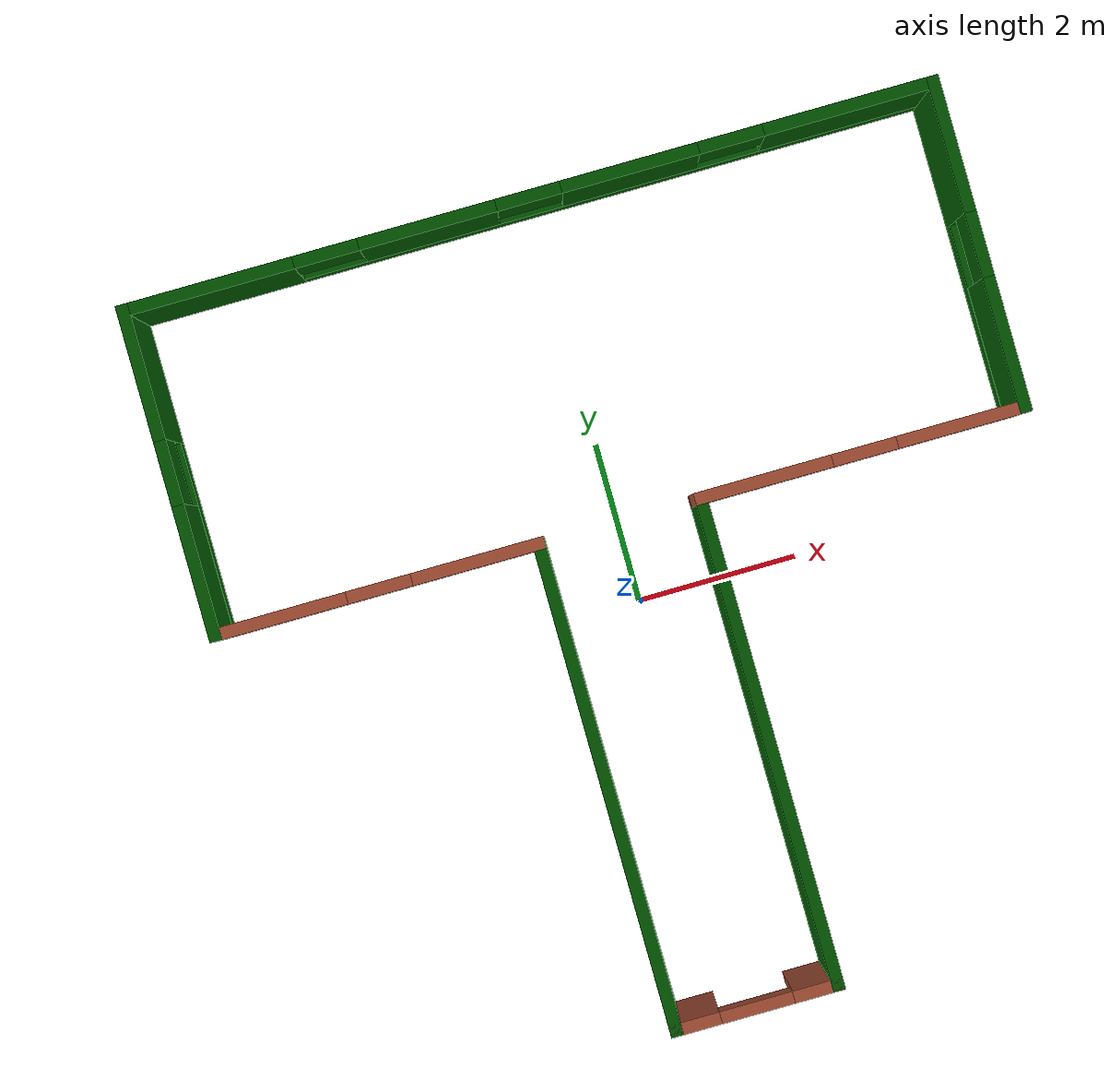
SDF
<?xml version='1.0'?>
<sdf version='1.6'>
  <model name='Big_T_Building'>
    <pose frame=''>0 -0 0 0 -0 0</pose>
    <link name='Wall_10'>
      <pose frame=''>5 3 0 0 0 -1.5708</pose>
      <visual name='Wall_10_Visual_0'>
        <pose frame=''>-1.2375 0 1.25 0 -0 0</pose>
        <geometry>
          <box>
            <size>1.675 0.15 2.5</size>
          </box>
        </geometry>
        <material>
          <script>
            <uri>file://media/materials/scripts/gazebo.material</uri>
            <name>Gazebo/Grey</name>
          </script>
          <ambient>0 0.333333 0 1</ambient>
        </material>
        <meta>
          <layer>0</layer>
        </meta>
      </visual>
      <collision name='Wall_10_Collision_0'>
        <geometry>
          <box>
            <size>1.675 0.15 2.5</size>
          </box>
        </geometry>
        <pose frame=''>-1.2375 0 1.25 0 -0 0</pose>
      </collision>
      <visual name='Wall_10_Visual_1'>
        <pose frame=''>0.8375 0 0.25 0 -0 0</pose>
        <geometry>
          <box>
            <size>2.475 0.15 0.5</size>
          </box>
        </geometry>
        <material>
          <script>
            <uri>file://media/materials/scripts/gazebo.material</uri>
            <name>Gazebo/Grey</name>
          </script>
          <ambient>0 0.333333 0 1</ambient>
        </material>
        <meta>
          <layer>0</layer>
        </meta>
      </visual>
      <collision name='Wall_10_Collision_1'>
        <geometry>
          <box>
            <size>2.475 0.15 0.5</size>
          </box>
        </geometry>
        <pose frame=''>0.8375 0 0.25 0 -0 0</pose>
      </collision>
      <visual name='Wall_10_Visual_2'>
        <pose frame=''>1.2375 0 1.5 0 -0 0</pose>
        <geometry>
          <box>
            <size>1.675 0.15 2</size>
          </box>
        </geometry>
        <material>
          <script>
            <uri>file://media/materials/scripts/gazebo.material</uri>
            <name>Gazebo/Grey</name>
          </script>
          <ambient>0 0.333333 0 1</ambient>
        </material>
        <meta>
          <layer>0</layer>
        </meta>
      </visual>
      <collision name='Wall_10_Collision_2'>
        <geometry>
          <box>
            <size>1.675 0.15 2</size>
          </box>
        </geometry>
        <pose frame=''>1.2375 0 1.5 0 -0 0</pose>
      </collision>
      <visual name='Wall_10_Visual_3'>
        <pose frame=''>0 0 1.9 0 -0 0</pose>
        <geometry>
          <box>
            <size>0.8 0.15 1.2</size>
          </box>
        </geometry>
        <material>
          <script>
            <uri>file://media/materials/scripts/gazebo.material</uri>
            <name>Gazebo/Grey</name>
          </script>
          <ambient>0 0.333333 0 1</ambient>
        </material>
        <meta>
          <layer>0</layer>
        </meta>
      </visual>
      <collision name='Wall_10_Collision_3'>
        <geometry>
          <box>
            <size>0.8 0.15 1.2</size>
          </box>
        </geometry>
        <pose frame=''>0 0 1.9 0 -0 0</pose>
      </collision>
    </link>
    <link name='Wall_12'>
      <pose frame=''>-5 3 0 0 0 -1.5708</pose>
      <visual name='Wall_12_Visual_0'>
        <pose frame=''>-1.2375 0 1.25 0 -0 0</pose>
        <geometry>
          <box>
            <size>1.675 0.15 2.5</size>
          </box>
        </geometry>
        <material>
          <script>
            <uri>file://media/materials/scripts/gazebo.material</uri>
            <name>Gazebo/Grey</name>
          </script>
          <ambient>0 0.333333 0 1</ambient>
        </material>
        <meta>
          <layer>0</layer>
        </meta>
      </visual>
      <collision name='Wall_12_Collision_0'>
        <geometry>
          <box>
            <size>1.675 0.15 2.5</size>
          </box>
        </geometry>
        <pose frame=''>-1.2375 0 1.25 0 -0 0</pose>
      </collision>
      <visual name='Wall_12_Visual_1'>
        <pose frame=''>0.8375 0 0.25 0 -0 0</pose>
        <geometry>
          <box>
            <size>2.475 0.15 0.5</size>
          </box>
        </geometry>
        <material>
          <script>
            <uri>file://media/materials/scripts/gazebo.material</uri>
            <name>Gazebo/Grey</name>
          </script>
          <ambient>0 0.333333 0 1</ambient>
        </material>
        <meta>
          <layer>0</layer>
        </meta>
      </visual>
      <collision name='Wall_12_Collision_1'>
        <geometry>
          <box>
            <size>2.475 0.15 0.5</size>
          </box>
        </geometry>
        <pose frame=''>0.8375 0 0.25 0 -0 0</pose>
      </collision>
      <visual name='Wall_12_Visual_2'>
        <pose frame=''>1.2375 0 1.5 0 -0 0</pose>
        <geometry>
          <box>
            <size>1.675 0.15 2</size>
          </box>
        </geometry>
        <material>
          <script>
            <uri>file://media/materials/scripts/gazebo.material</uri>
            <name>Gazebo/Grey</name>
          </script>
          <ambient>0 0.333333 0 1</ambient>
        </material>
        <meta>
          <layer>0</layer>
        </meta>
      </visual>
      <collision name='Wall_12_Collision_2'>
        <geometry>
          <box>
            <size>1.675 0.15 2</size>
          </box>
        </geometry>
        <pose frame=''>1.2375 0 1.5 0 -0 0</pose>
      </collision>
      <visual name='Wall_12_Visual_3'>
        <pose frame=''>0 0 1.9 0 -0 0</pose>
        <geometry>
          <box>
            <size>0.8 0.15 1.2</size>
          </box>
        </geometry>
        <material>
          <script>
            <uri>file://media/materials/scripts/gazebo.material</uri>
            <name>Gazebo/Grey</name>
          </script>
          <ambient>0 0.333333 0 1</ambient>
        </material>
        <meta>
          <layer>0</layer>
        </meta>
      </visual>
      <collision name='Wall_12_Collision_3'>
        <geometry>
          <box>
            <size>0.8 0.15 1.2</size>
          </box>
        </geometry>
        <pose frame=''>0 0 1.9 0 -0 0</pose>
      </collision>
    </link>
    <link name='Wall_25'>
      <pose frame=''>-3 1 0 0 -0 0</pose>
      <visual name='Wall_25_Visual_0'>
        <pose frame=''>-1.22162 0 1.25 0 -0 0</pose>
        <geometry>
          <box>
            <size>1.70676 0.15 2.5</size>
          </box>
        </geometry>
        <material>
          <script>
            <uri>file://media/materials/scripts/gazebo.material</uri>
            <name>Gazebo/Bricks</name>
          </script>
          <ambient>0 0.333333 0 1</ambient>
        </material>
        <meta>
          <layer>0</layer>
        </meta>
      </visual>
      <collision name='Wall_25_Collision_0'>
        <geometry>
          <box>
            <size>1.70676 0.15 2.5</size>
          </box>
        </geometry>
        <pose frame=''>-1.22162 0 1.25 0 -0 0</pose>
      </collision>
      <visual name='Wall_25_Visual_1'>
        <pose frame=''>0.853379 0 0.25 0 -0 0</pose>
        <geometry>
          <box>
            <size>2.44324 0.15 0.5</size>
          </box>
        </geometry>
        <material>
          <script>
            <uri>file://media/materials/scripts/gazebo.material</uri>
            <name>Gazebo/Bricks</name>
          </script>
          <ambient>0 0.333333 0 1</ambient>
        </material>
        <meta>
          <layer>0</layer>
        </meta>
      </visual>
      <collision name='Wall_25_Collision_1'>
        <geometry>
          <box>
            <size>2.44324 0.15 0.5</size>
          </box>
        </geometry>
        <pose frame=''>0.853379 0 0.25 0 -0 0</pose>
      </collision>
      <visual name='Wall_25_Visual_2'>
        <pose frame=''>1.25338 0 1.5 0 -0 0</pose>
        <geometry>
          <box>
            <size>1.64324 0.15 2</size>
          </box>
        </geometry>
        <material>
          <script>
            <uri>file://media/materials/scripts/gazebo.material</uri>
            <name>Gazebo/Bricks</name>
          </script>
          <ambient>0 0.333333 0 1</ambient>
        </material>
        <meta>
          <layer>0</layer>
        </meta>
      </visual>
      <collision name='Wall_25_Collision_2'>
        <geometry>
          <box>
            <size>1.64324 0.15 2</size>
          </box>
        </geometry>
        <pose frame=''>1.25338 0 1.5 0 -0 0</pose>
      </collision>
      <visual name='Wall_25_Visual_3'>
        <pose frame=''>0.031757 0 1.9 0 -0 0</pose>
        <geometry>
          <box>
            <size>0.8 0.15 1.2</size>
          </box>
        </geometry>
        <material>
          <script>
            <uri>file://media/materials/scripts/gazebo.material</uri>
            <name>Gazebo/Bricks</name>
          </script>
          <ambient>0 0.333333 0 1</ambient>
        </material>
        <meta>
          <layer>0</layer>
        </meta>
      </visual>
      <collision name='Wall_25_Collision_3'>
        <geometry>
          <box>
            <size>0.8 0.15 1.2</size>
          </box>
        </geometry>
        <pose frame=''>0.031757 0 1.9 0 -0 0</pose>
      </collision>
    </link>
    <link name='Wall_27'>
      <pose frame=''>3 1 0 0 -0 3.14159</pose>
      <visual name='Wall_27_Visual_0'>
        <pose frame=''>-1.24879 0 1.25 0 -0 0</pose>
        <geometry>
          <box>
            <size>1.65241 0.15 2.5</size>
          </box>
        </geometry>
        <material>
          <script>
            <uri>file://media/materials/scripts/gazebo.material</uri>
            <name>Gazebo/Bricks</name>
          </script>
          <ambient>0 0.333333 0 1</ambient>
        </material>
        <meta>
          <layer>0</layer>
        </meta>
      </visual>
      <collision name='Wall_27_Collision_0'>
        <geometry>
          <box>
            <size>1.65241 0.15 2.5</size>
          </box>
        </geometry>
        <pose frame=''>-1.24879 0 1.25 0 -0 0</pose>
      </collision>
      <visual name='Wall_27_Visual_1'>
        <pose frame=''>0.826208 0 0.25 0 -0 0</pose>
        <geometry>
          <box>
            <size>2.49758 0.15 0.5</size>
          </box>
        </geometry>
        <material>
          <script>
            <uri>file://media/materials/scripts/gazebo.material</uri>
            <name>Gazebo/Bricks</name>
          </script>
          <ambient>0 0.333333 0 1</ambient>
        </material>
        <meta>
          <layer>0</layer>
        </meta>
      </visual>
      <collision name='Wall_27_Collision_1'>
        <geometry>
          <box>
            <size>2.49758 0.15 0.5</size>
          </box>
        </geometry>
        <pose frame=''>0.826208 0 0.25 0 -0 0</pose>
      </collision>
      <visual name='Wall_27_Visual_2'>
        <pose frame=''>1.22621 0 1.5 0 -0 0</pose>
        <geometry>
          <box>
            <size>1.69758 0.15 2</size>
          </box>
        </geometry>
        <material>
          <script>
            <uri>file://media/materials/scripts/gazebo.material</uri>
            <name>Gazebo/Bricks</name>
          </script>
          <ambient>0 0.333333 0 1</ambient>
        </material>
        <meta>
          <layer>0</layer>
        </meta>
      </visual>
      <collision name='Wall_27_Collision_2'>
        <geometry>
          <box>
            <size>1.69758 0.15 2</size>
          </box>
        </geometry>
        <pose frame=''>1.22621 0 1.5 0 -0 0</pose>
      </collision>
      <visual name='Wall_27_Visual_3'>
        <pose frame=''>-0.022585 0 1.9 0 -0 0</pose>
        <geometry>
          <box>
            <size>0.8 0.15 1.2</size>
          </box>
        </geometry>
        <material>
          <script>
            <uri>file://media/materials/scripts/gazebo.material</uri>
            <name>Gazebo/Bricks</name>
          </script>
          <ambient>0 0.333333 0 1</ambient>
        </material>
        <meta>
          <layer>0</layer>
        </meta>
      </visual>
      <collision name='Wall_27_Collision_3'>
        <geometry>
          <box>
            <size>0.8 0.15 1.2</size>
          </box>
        </geometry>
        <pose frame=''>-0.022585 0 1.9 0 -0 0</pose>
      </collision>
    </link>
    <link name='Wall_29'>
      <collision name='Wall_29_Collision'>
        <geometry>
          <box>
            <size>6.15 0.15 2.5</size>
          </box>
        </geometry>
        <pose frame=''>0 0 1.25 0 -0 0</pose>
      </collision>
      <visual name='Wall_29_Visual'>
        <pose frame=''>0 0 1.25 0 -0 0</pose>
        <geometry>
          <box>
            <size>6.15 0.15 2.5</size>
          </box>
        </geometry>
        <material>
          <script>
            <uri>file://media/materials/scripts/gazebo.material</uri>
            <name>Gazebo/Grey</name>
          </script>
          <ambient>0 0.333333 0 1</ambient>
        </material>
        <meta>
          <layer>0</layer>
        </meta>
      </visual>
      <pose frame=''>-1 -2 0 0 0 -1.5708</pose>
    </link>
    <link name='Wall_31'>
      <collision name='Wall_31_Collision'>
        <geometry>
          <box>
            <size>6.15 0.15 2.5</size>
          </box>
        </geometry>
        <pose frame=''>0 0 1.25 0 -0 0</pose>
      </collision>
      <visual name='Wall_31_Visual'>
        <pose frame=''>0 0 1.25 0 -0 0</pose>
        <geometry>
          <box>
            <size>6.15 0.15 2.5</size>
          </box>
        </geometry>
        <material>
          <script>
            <uri>file://media/materials/scripts/gazebo.material</uri>
            <name>Gazebo/Grey</name>
          </script>
          <ambient>0 0.333333 0 1</ambient>
        </material>
        <meta>
          <layer>0</layer>
        </meta>
      </visual>
      <pose frame=''>1 -2 0 0 0 -1.5708</pose>
    </link>
    <link name='Wall_32'>
      <pose frame=''>0 -5 0 0 -0 3.14159</pose>
      <visual name='Wall_32_Visual_0'>
        <pose frame=''>-0.763969 0 1.25 0 -0 0</pose>
        <geometry>
          <box>
            <size>0.622062 0.15 2.5</size>
          </box>
        </geometry>
        <material>
          <script>
            <uri>file://media/materials/scripts/gazebo.material</uri>
            <name>Gazebo/Bricks</name>
          </script>
          <ambient>0 0.333333 0 1</ambient>
        </material>
        <meta>
          <layer>0</layer>
        </meta>
      </visual>
      <collision name='Wall_32_Collision_0'>
        <geometry>
          <box>
            <size>0.622062 0.15 2.5</size>
          </box>
        </geometry>
        <pose frame=''>-0.763969 0 1.25 0 -0 0</pose>
      </collision>
      <visual name='Wall_32_Visual_1'>
        <pose frame=''>0.761031 0 1.25 0 -0 0</pose>
        <geometry>
          <box>
            <size>0.627938 0.15 2.5</size>
          </box>
        </geometry>
        <material>
          <script>
            <uri>file://media/materials/scripts/gazebo.material</uri>
            <name>Gazebo/Bricks</name>
          </script>
          <ambient>0 0.333333 0 1</ambient>
        </material>
        <meta>
          <layer>0</layer>
        </meta>
      </visual>
      <collision name='Wall_32_Collision_1'>
        <geometry>
          <box>
            <size>0.627938 0.15 2.5</size>
          </box>
        </geometry>
        <pose frame=''>0.761031 0 1.25 0 -0 0</pose>
      </collision>
      <visual name='Wall_32_Visual_2'>
        <pose frame=''>-0.002938 0 2.25 0 -0 0</pose>
        <geometry>
          <box>
            <size>0.9 0.15 0.5</size>
          </box>
        </geometry>
        <material>
          <script>
            <uri>file://media/materials/scripts/gazebo.material</uri>
            <name>Gazebo/Bricks</name>
          </script>
          <ambient>0 0.333333 0 1</ambient>
        </material>
        <meta>
          <layer>0</layer>
        </meta>
      </visual>
      <collision name='Wall_32_Collision_2'>
        <geometry>
          <box>
            <size>0.9 0.15 0.5</size>
          </box>
        </geometry>
        <pose frame=''>-0.002938 0 2.25 0 -0 0</pose>
      </collision>
    </link>
    <link name='Wall_9'>
      <pose frame=''>0 5 0 0 -0 0</pose>
      <visual name='Wall_9_Visual_0'>
        <pose frame=''>-3.9875 0 1.25 0 -0 0</pose>
        <geometry>
          <box>
            <size>2.175 0.15 2.5</size>
          </box>
        </geometry>
        <material>
          <script>
            <uri>file://media/materials/scripts/gazebo.material</uri>
            <name>Gazebo/Grey</name>
          </script>
          <ambient>0 0.333333 0 1</ambient>
        </material>
        <meta>
          <layer>0</layer>
        </meta>
      </visual>
      <collision name='Wall_9_Collision_0'>
        <geometry>
          <box>
            <size>2.175 0.15 2.5</size>
          </box>
        </geometry>
        <pose frame=''>-3.9875 0 1.25 0 -0 0</pose>
      </collision>
      <visual name='Wall_9_Visual_1'>
        <pose frame=''>1.0875 0 0.25 0 -0 0</pose>
        <geometry>
          <box>
            <size>7.975 0.15 0.5</size>
          </box>
        </geometry>
        <material>
          <script>
            <uri>file://media/materials/scripts/gazebo.material</uri>
            <name>Gazebo/Grey</name>
          </script>
          <ambient>0 0.333333 0 1</ambient>
        </material>
        <meta>
          <layer>0</layer>
        </meta>
      </visual>
      <collision name='Wall_9_Collision_1'>
        <geometry>
          <box>
            <size>7.975 0.15 0.5</size>
          </box>
        </geometry>
        <pose frame=''>1.0875 0 0.25 0 -0 0</pose>
      </collision>
      <visual name='Wall_9_Visual_2'>
        <pose frame=''>-1.25 0 1.5 0 -0 0</pose>
        <geometry>
          <box>
            <size>1.7 0.15 2</size>
          </box>
        </geometry>
        <material>
          <script>
            <uri>file://media/materials/scripts/gazebo.material</uri>
            <name>Gazebo/Grey</name>
          </script>
          <ambient>0 0.333333 0 1</ambient>
        </material>
        <meta>
          <layer>0</layer>
        </meta>
      </visual>
      <collision name='Wall_9_Collision_2'>
        <geometry>
          <box>
            <size>1.7 0.15 2</size>
          </box>
        </geometry>
        <pose frame=''>-1.25 0 1.5 0 -0 0</pose>
      </collision>
      <visual name='Wall_9_Visual_3'>
        <pose frame=''>1.25 0 1.5 0 -0 0</pose>
        <geometry>
          <box>
            <size>1.7 0.15 2</size>
          </box>
        </geometry>
        <material>
          <script>
            <uri>file://media/materials/scripts/gazebo.material</uri>
            <name>Gazebo/Grey</name>
          </script>
          <ambient>0 0.333333 0 1</ambient>
        </material>
        <meta>
          <layer>0</layer>
        </meta>
      </visual>
      <collision name='Wall_9_Collision_3'>
        <geometry>
          <box>
            <size>1.7 0.15 2</size>
          </box>
        </geometry>
        <pose frame=''>1.25 0 1.5 0 -0 0</pose>
      </collision>
      <visual name='Wall_9_Visual_4'>
        <pose frame=''>3.9875 0 1.5 0 -0 0</pose>
        <geometry>
          <box>
            <size>2.175 0.15 2</size>
          </box>
        </geometry>
        <material>
          <script>
            <uri>file://media/materials/scripts/gazebo.material</uri>
            <name>Gazebo/Grey</name>
          </script>
          <ambient>0 0.333333 0 1</ambient>
        </material>
        <meta>
          <layer>0</layer>
        </meta>
      </visual>
      <collision name='Wall_9_Collision_4'>
        <geometry>
          <box>
            <size>2.175 0.15 2</size>
          </box>
        </geometry>
        <pose frame=''>3.9875 0 1.5 0 -0 0</pose>
      </collision>
      <visual name='Wall_9_Visual_5'>
        <pose frame=''>-2.5 0 1.9 0 -0 0</pose>
        <geometry>
          <box>
            <size>0.8 0.15 1.2</size>
          </box>
        </geometry>
        <material>
          <script>
            <uri>file://media/materials/scripts/gazebo.material</uri>
            <name>Gazebo/Grey</name>
          </script>
          <ambient>0 0.333333 0 1</ambient>
        </material>
        <meta>
          <layer>0</layer>
        </meta>
      </visual>
      <collision name='Wall_9_Collision_5'>
        <geometry>
          <box>
            <size>0.8 0.15 1.2</size>
          </box>
        </geometry>
        <pose frame=''>-2.5 0 1.9 0 -0 0</pose>
      </collision>
      <visual name='Wall_9_Visual_6'>
        <pose frame=''>-0 0 1.9 0 -0 0</pose>
        <geometry>
          <box>
            <size>0.8 0.15 1.2</size>
          </box>
        </geometry>
        <material>
          <script>
            <uri>file://media/materials/scripts/gazebo.material</uri>
            <name>Gazebo/Grey</name>
          </script>
          <ambient>0 0.333333 0 1</ambient>
        </material>
        <meta>
          <layer>0</layer>
        </meta>
      </visual>
      <collision name='Wall_9_Collision_6'>
        <geometry>
          <box>
            <size>0.8 0.15 1.2</size>
          </box>
        </geometry>
        <pose frame=''>-0 0 1.9 0 -0 0</pose>
      </collision>
      <visual name='Wall_9_Visual_7'>
        <pose frame=''>2.5 0 1.9 0 -0 0</pose>
        <geometry>
          <box>
            <size>0.8 0.15 1.2</size>
          </box>
        </geometry>
        <material>
          <script>
            <uri>file://media/materials/scripts/gazebo.material</uri>
            <name>Gazebo/Grey</name>
          </script>
          <ambient>0 0.333333 0 1</ambient>
        </material>
        <meta>
          <layer>0</layer>
        </meta>
      </visual>
      <collision name='Wall_9_Collision_7'>
        <geometry>
          <box>
            <size>0.8 0.15 1.2</size>
          </box>
        </geometry>
        <pose frame=''>2.5 0 1.9 0 -0 0</pose>
      </collision>
    </link>
    <static>1</static>
  </model>
</sdf>
